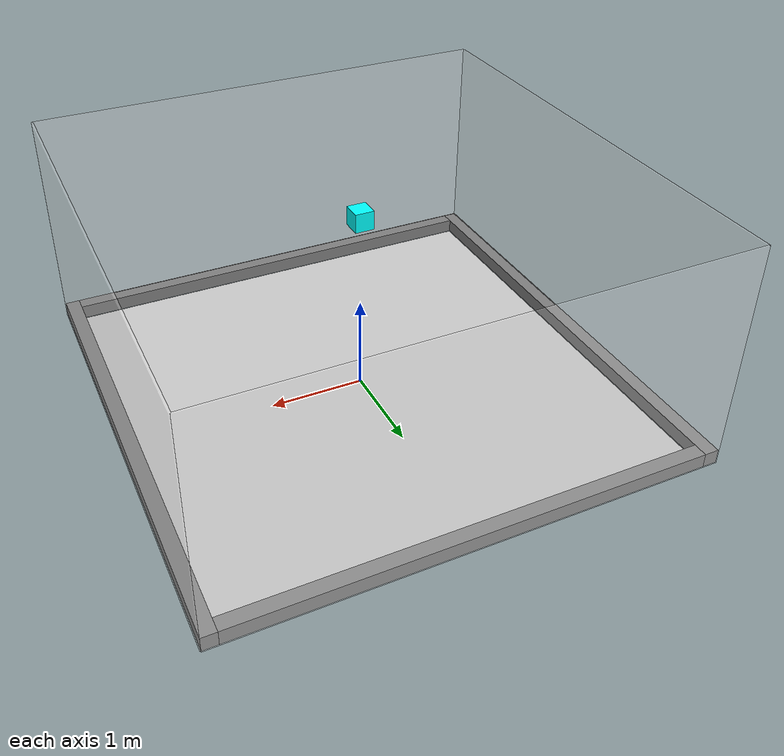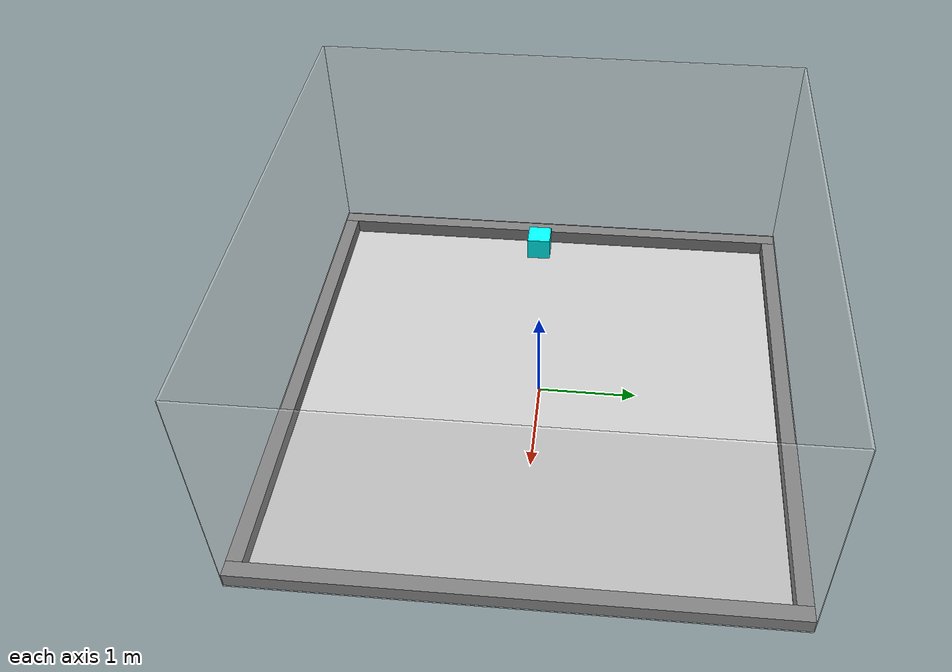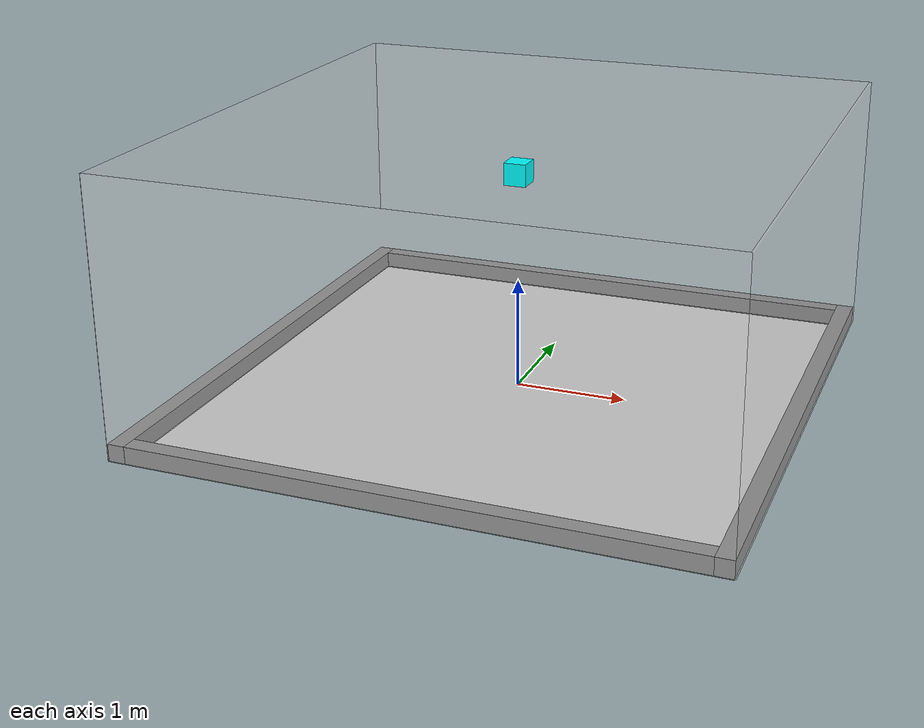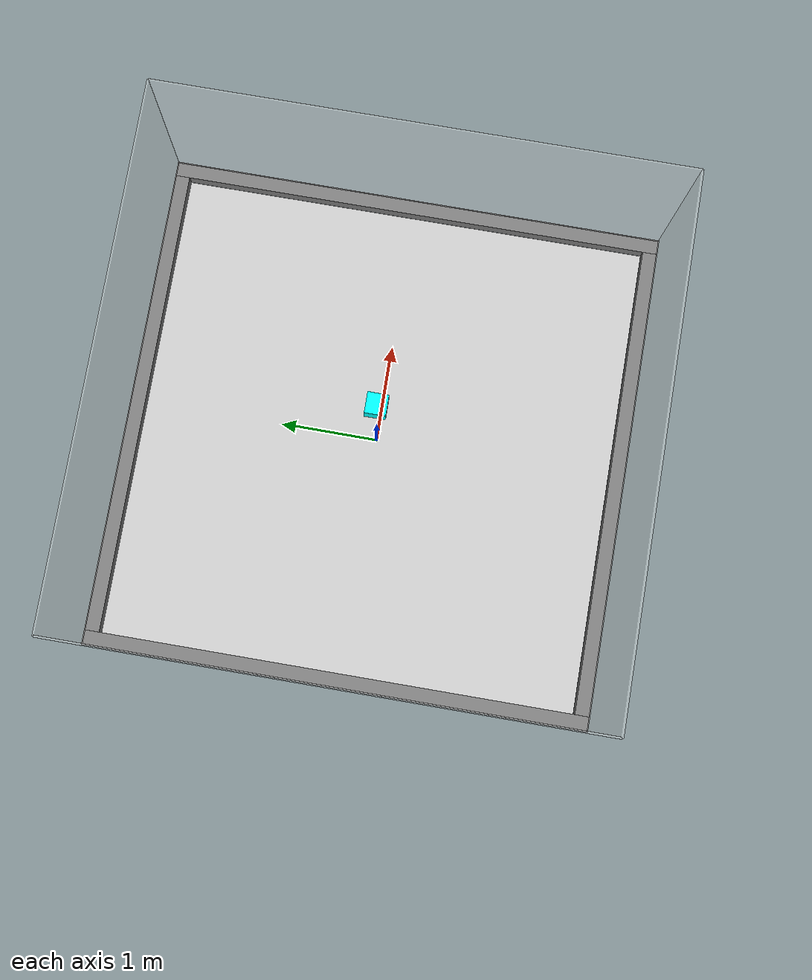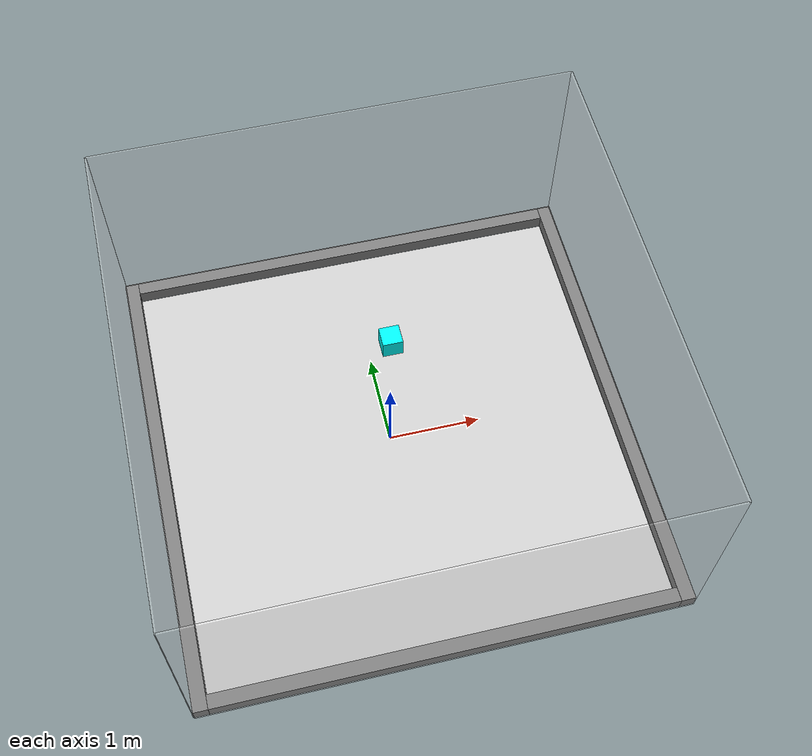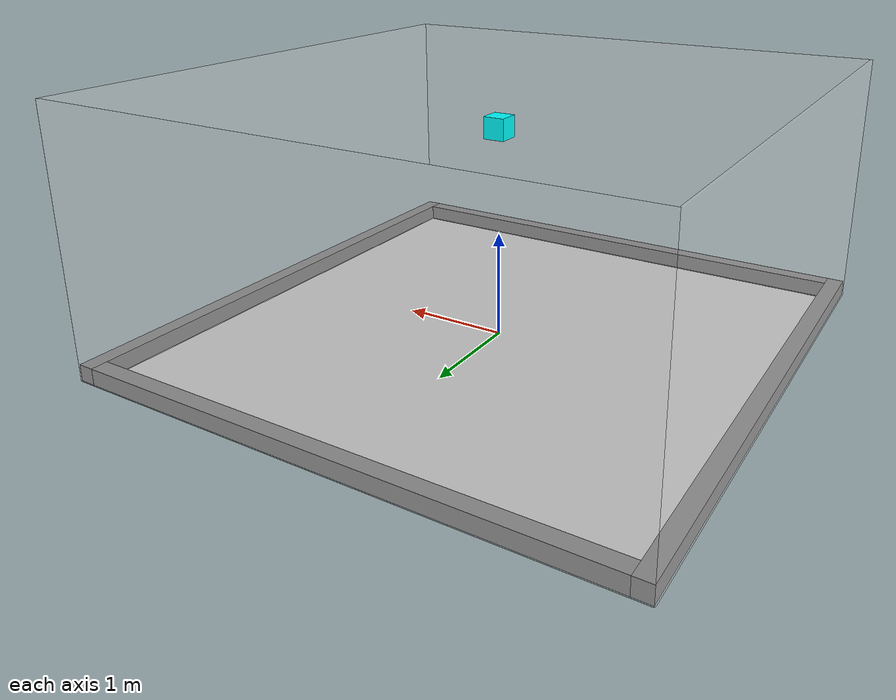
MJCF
<mujoco>
<option gravity="0 0 -9.81"/>
  <worldbody>
    <light diffuse=".5 .5 .5" pos="0 0 3" dir="0 0 -1"/>
    <geom type="plane" size="2.4384 2.4384 0.1" rgba=".8 .8 .8 1"/>
    <geom type="box" size="2.4384 0.0762 0.0762" rgba=".5 .5 .5 1" pos="0 2.5146 0.0762"/>
    <geom type="box" size="2.4384 0.0762 0.0762" rgba=".5 .5 .5 1" pos="0 -2.5146 0.0762"/>
    <geom type="box" size="0.0762 2.5908 0.0762" rgba=".5 .5 .5 1" pos="2.5146 0 0.0762"/>
    <geom type="box" size="0.0762 2.5908 0.0762" rgba=".5 .5 .5 1" pos="-2.5146 0 0.0762"/>
    <geom type="box" size="1.2192 2.5908 0.01" rgba=" 1 1 1 0.25" pos="2.5908 0  1.2192" euler="0 90 0"/>
    <geom type="box" size="1.2192 2.5908 0.01" rgba=" 1 1 1 0.25" pos="-2.5908 0  1.2192" euler="0 -90 0"/>
    <geom type="box" size="1.2192 2.5908 0.01" rgba=" 1 1 1 0.25" pos="0 2.5908 1.2192" euler="90 0 90"/>
    <geom type="box" size="1.2192 2.5908 0.01" rgba=" 1 1 1 0.25" pos="0 -2.5908 1.2192" euler="90 0 90"/>
    <body pos="0 0 2">
        <geom type="box" size="0.1 0.1 0.1" rgba=" 0 1 1 1"/>
        <freejoint/>
    </body>
  </worldbody>
</mujoco>
